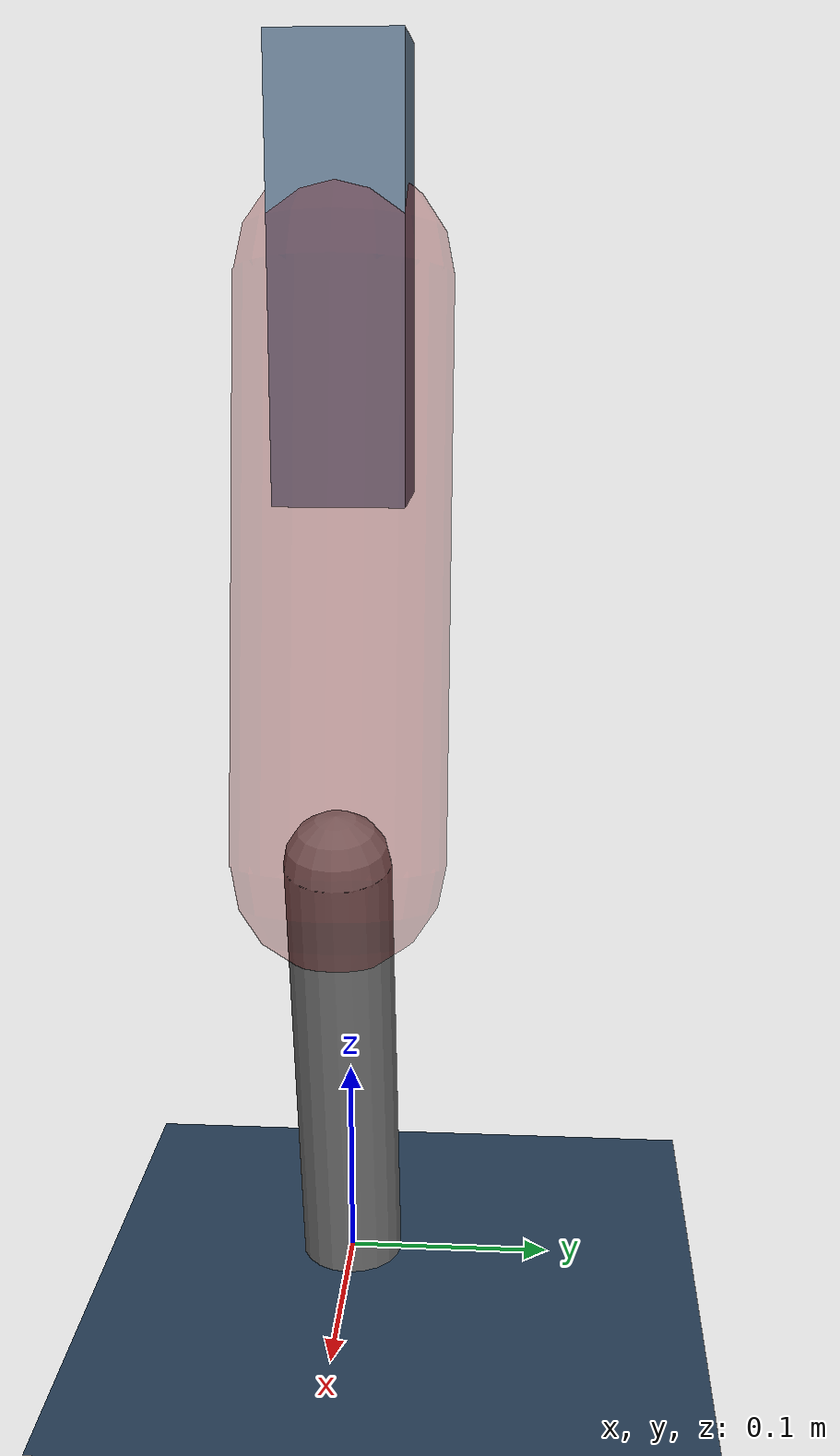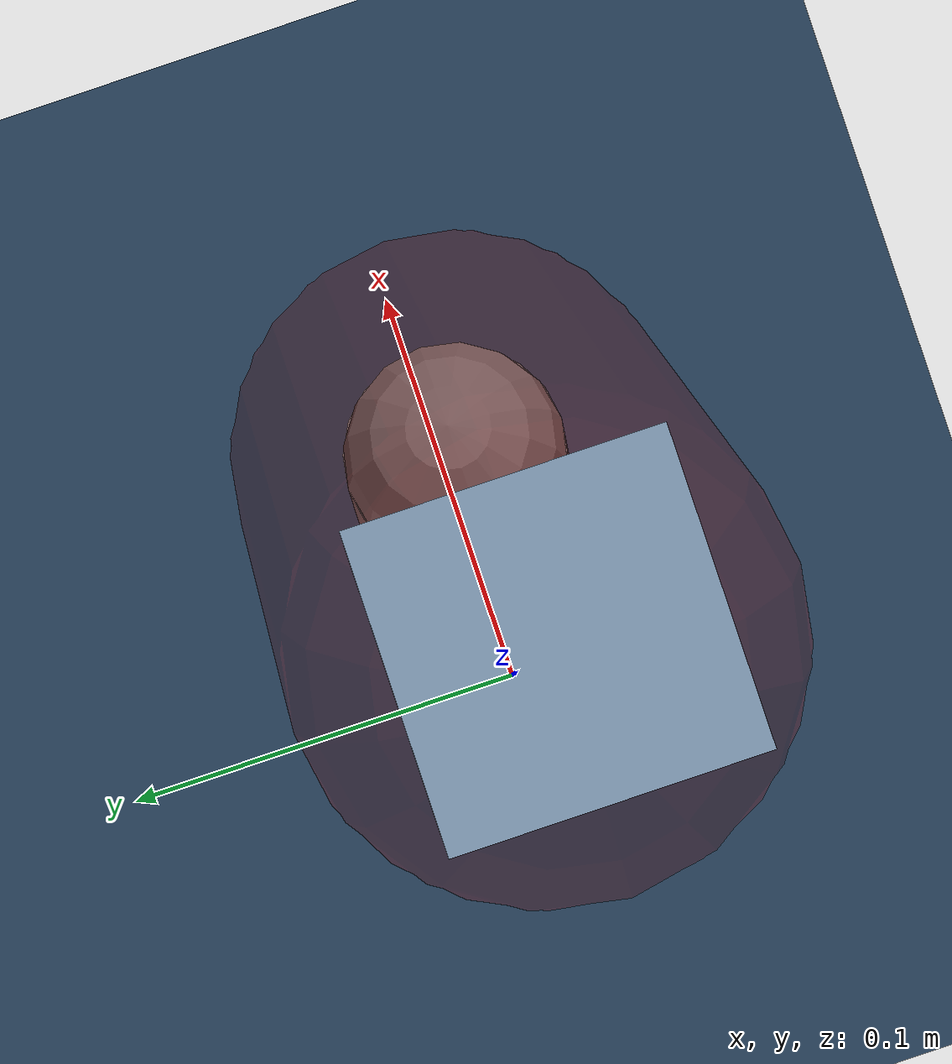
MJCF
<mujoco model="Hopper2D">
	<compiler inertiafromgeom="true" angle="radian" />
	<option timestep="0.001" integrator="implicit" cone="elliptic" solver="Newton" tolerance="1e-10" />

	<default>
		<geom contype="1" conaffinity="1" condim="3" friction="2 0.005 0.0001" solref="0.005 1" />
		<joint limited="true" damping="0.1" />
	</default>

	<asset>
		<texture name="skybox" type="skybox" builtin="gradient" rgb1=".4 .6 .8" rgb2="0 0 0" width="800" height="800" />
		<texture name="grid" type="2d" builtin="checker" rgb1=".1 .2 .3" rgb2=".2 .3 .4" width="300" height="300" mark="edge" markrgb=".2 .3 .4" />
		<material name="ground" texture="grid" texrepeat="1 1" texuniform="true" reflectance="0.1" />
		<material name="leg" rgba="0.5 0.6 0.7 1" />
	</asset>

	<worldbody>

		<geom name="floor" type="plane" size="5 5 0.25" material="ground" />

		<light directional="false" diffuse="0.8 0.8 0.8" specular="0.3 0.3 0.3" pos="0 0 2" dir="0 0 -1" />
		<light mode="targetbodycom" target="base" directional="false" diffuse="0.8 0.8 0.8" specular="0.3 0.3 0.3" pos="0 0 2" dir="0 0 -1" />

		<camera name="fixed" pos="0 -2 1" xyaxes="1 0 0 0 0 1" />
		<camera name="tracking" mode="trackcom" pos="0 -3 1" />

		<body name="root" pos="0 0 0.4871646204199289">
			<joint name="slide_x" type="slide" axis="1 0 0" range="-100 100" />
			<joint name="slide_z" type="slide" axis="0 0 1" range="0 10" />

			<body name="base" pos="0 0 0">
				<geom name="torso" type="box" size="0.03 0.03 0.1" mass="3.79" material="leg" />

				<body name="link1" pos="0 0 0" euler="0 1.3834583644681198 0">
					<joint type="hinge" axis="0 -1 0" pos="0 0 0" name="hinge1" limited="true" range="-3.14 3.14" stiffness="0" damping="0.1" />
					<geom name="thigh" type="capsule" fromto="0 0 0 0.2656949329345376 0 0" size="0.05" rgba="0.5 0 0 0.3" mass="0.8973068256297977" />

					<body name="link2" pos="0.2656949329345376 0 0" euler="0 0.40278306233484823 0">
						<joint type="hinge" axis="0 -1 0" pos="0 0 0" name="hinge2" limited="true" range="-3.14 3.14" stiffness="0" damping="0.1" />
						<geom name="shank" type="capsule" fromto="0 0 0 0.23146968748539135 0 0" size="0.025" mass="0.4271757499883131" />

					</body>
				</body>
			</body>
		</body>
	</worldbody>

	<actuator>
		<motor name="torque1" joint="hinge1" ctrlrange="-133.55319797494653 133.55319797494653" ctrllimited="true" gear="1" />
		<motor name="torque2" joint="hinge2" ctrlrange="-176.7361421939217 176.7361421939217" ctrllimited="true" gear="1" />
	</actuator>
</mujoco>
